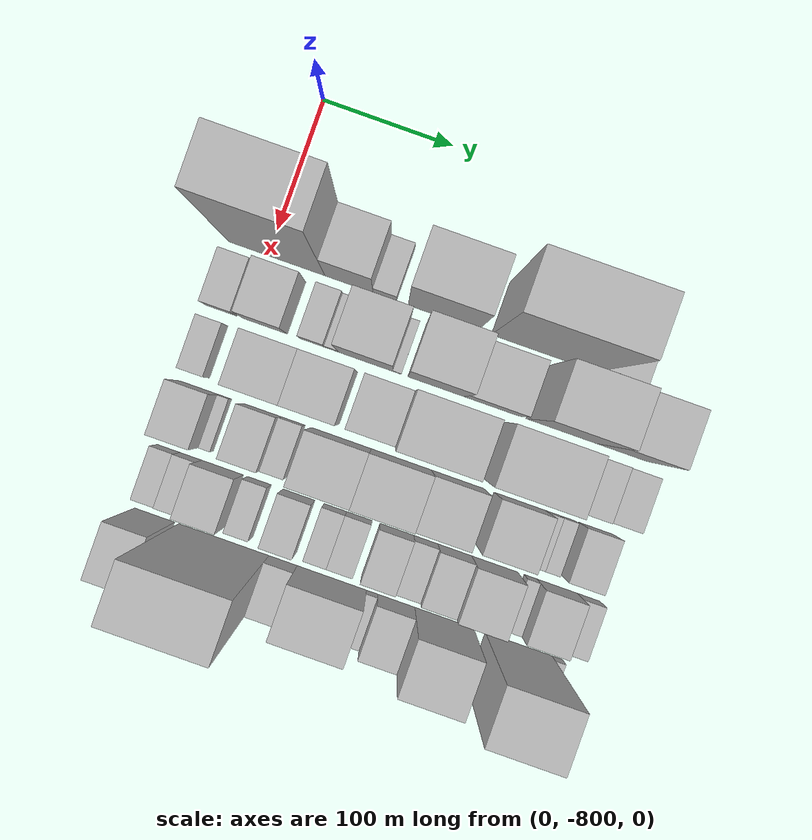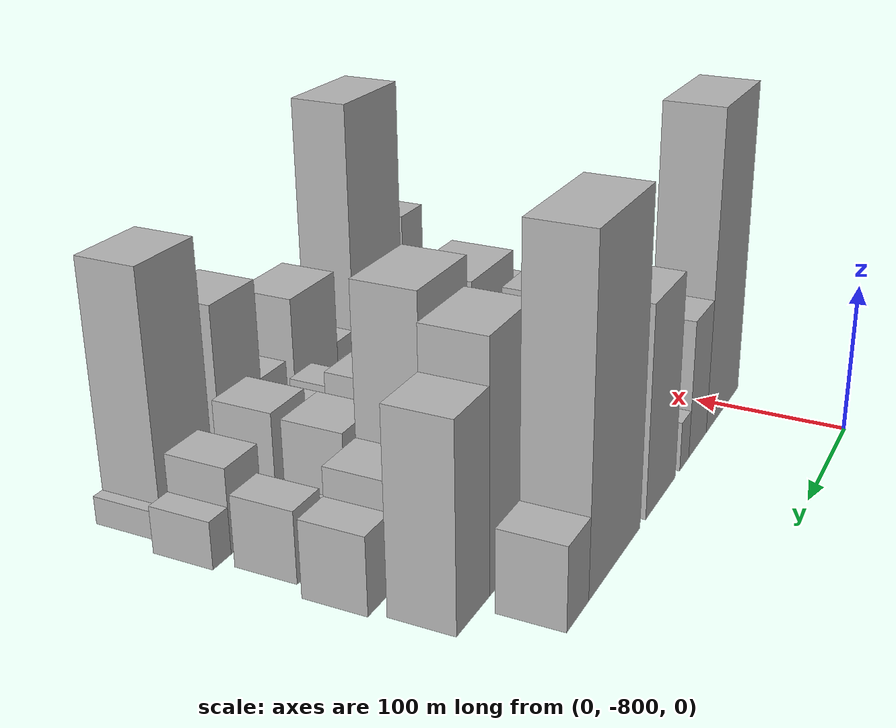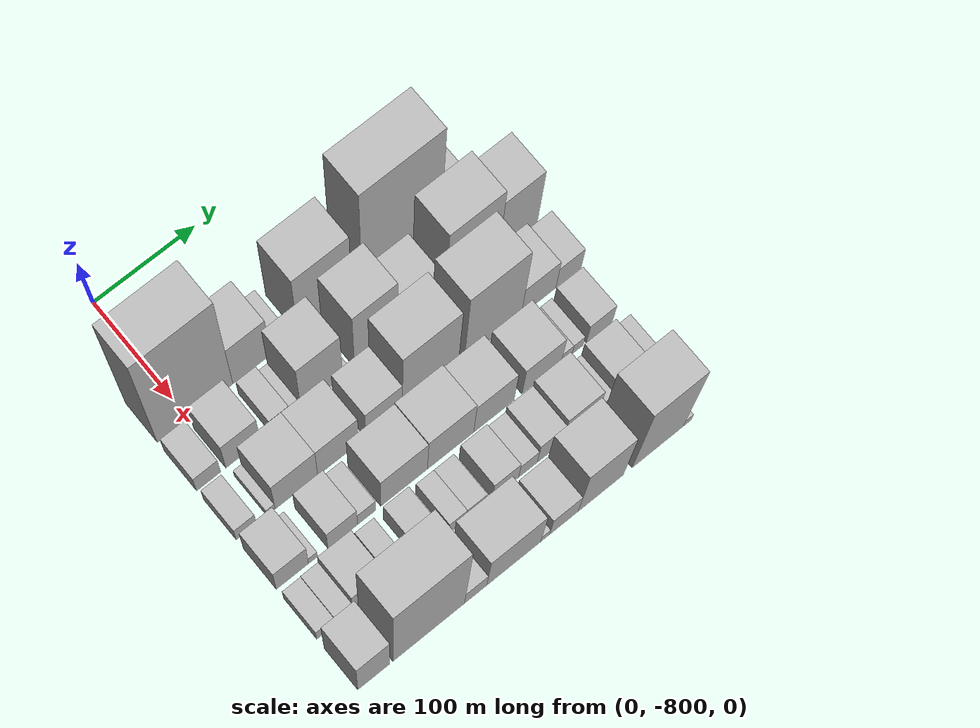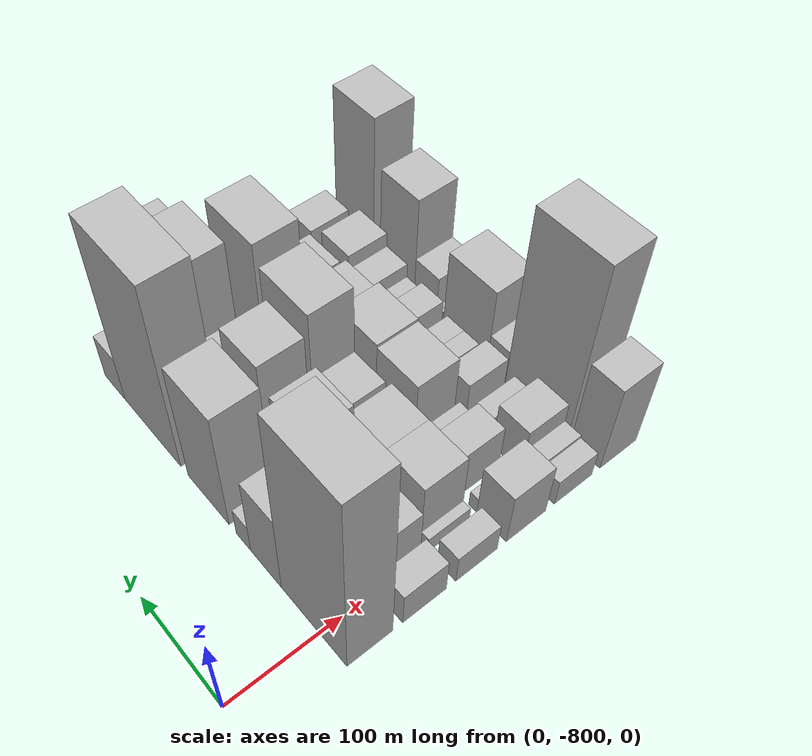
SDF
<sdf version="1.6">
 <world name="default">
  <model name="building_1">
   <static>1</static>
   <pose>100.0000 -793.1212 0 0.000000 0.000000 0.000000</pose>
   <link name="link">
    <pose>0 0 108.00 0 0 0</pose>
    <collision name="collision"><geometry><box><size>40.0000 73.7576 216.0000</size></box></geometry></collision>
    <visual name="visual">
     <cast_shadows>0</cast_shadows>
     <geometry><box><size>40.0000 73.7576 216.0000</size></box></geometry>
     <material>
      <script>
       <uri>model://HANNAS_wall/materials/scripts</uri>
       <uri>model://HANNAS_wall/materials/textures</uri>
       <name>vrc/HANNAS_wall</name>
      </script>
     </material>
    </visual>
   </link>
  </model>
  <model name="building_2">
   <static>1</static>
   <pose>100.0000 -737.7081 0 0.000000 0.000000 0.000000</pose>
   <link name="link">
    <pose>0 0 46.50 0 0 0</pose>
    <collision name="collision"><geometry><box><size>40.0000 37.0684 93.0000</size></box></geometry></collision>
    <visual name="visual">
     <cast_shadows>0</cast_shadows>
     <geometry><box><size>40.0000 37.0684 93.0000</size></box></geometry>
     <material>
      <script>
       <uri>model://HANNAS_wall/materials/scripts</uri>
       <uri>model://HANNAS_wall/materials/textures</uri>
       <name>vrc/HANNAS_wall</name>
      </script>
     </material>
    </visual>
   </link>
  </model>
  <model name="building_3">
   <static>1</static>
   <pose>100.0000 -710.1865 0 0.000000 0.000000 0.000000</pose>
   <link name="link">
    <pose>0 0 16.50 0 0 0</pose>
    <collision name="collision"><geometry><box><size>40.0000 17.9748 33.0000</size></box></geometry></collision>
    <visual name="visual">
     <cast_shadows>0</cast_shadows>
     <geometry><box><size>40.0000 17.9748 33.0000</size></box></geometry>
     <material>
      <script>
       <uri>model://HANNAS_wall/materials/scripts</uri>
       <uri>model://HANNAS_wall/materials/textures</uri>
       <name>vrc/HANNAS_wall</name>
      </script>
     </material>
    </visual>
   </link>
  </model>
  <model name="building_4">
   <static>1</static>
   <pose>100.0000 -665.2125 0 0.000000 0.000000 0.000000</pose>
   <link name="link">
    <pose>0 0 67.50 0 0 0</pose>
    <collision name="collision"><geometry><box><size>40.0000 53.9733 135.0000</size></box></geometry></collision>
    <visual name="visual">
     <cast_shadows>0</cast_shadows>
     <geometry><box><size>40.0000 53.9733 135.0000</size></box></geometry>
     <material>
      <script>
       <uri>model://HANNAS_wall/materials/scripts</uri>
       <uri>model://HANNAS_wall/materials/textures</uri>
       <name>vrc/HANNAS_wall</name>
      </script>
     </material>
    </visual>
   </link>
  </model>
  <model name="building_5">
   <static>1</static>
   <pose>100.0000 -588.1963 0 0.000000 0.000000 0.000000</pose>
   <link name="link">
    <pose>0 0 103.50 0 0 0</pose>
    <collision name="collision"><geometry><box><size>40.0000 80.0591 207.0000</size></box></geometry></collision>
    <visual name="visual">
     <cast_shadows>0</cast_shadows>
     <geometry><box><size>40.0000 80.0591 207.0000</size></box></geometry>
     <material>
      <script>
       <uri>model://HANNAS_wall/materials/scripts</uri>
       <uri>model://HANNAS_wall/materials/textures</uri>
       <name>vrc/HANNAS_wall</name>
      </script>
     </material>
    </visual>
   </link>
  </model>
  <model name="building_6">
   <static>1</static>
   <pose>100.0000 -533.0050 0 0.000000 0.000000 0.000000</pose>
   <link name="link">
    <pose>0 0 25.50 0 0 0</pose>
    <collision name="collision"><geometry><box><size>40.0000 30.3234 51.0000</size></box></geometry></collision>
    <visual name="visual">
     <cast_shadows>0</cast_shadows>
     <geometry><box><size>40.0000 30.3234 51.0000</size></box></geometry>
     <material>
      <script>
       <uri>model://HANNAS_wall/materials/scripts</uri>
       <uri>model://HANNAS_wall/materials/textures</uri>
       <name>vrc/HANNAS_wall</name>
      </script>
     </material>
    </visual>
   </link>
  </model>
  <model name="building_49">
   <static>1</static>
   <pose>149.0000 -818.3011 0 0.000000 0.000000 0.000000</pose>
   <link name="link">
    <pose>0 0 19.50 0 0 0</pose>
    <collision name="collision"><geometry><box><size>40.0000 23.3978 39.0000</size></box></geometry></collision>
    <visual name="visual">
     <cast_shadows>0</cast_shadows>
     <geometry><box><size>40.0000 23.3978 39.0000</size></box></geometry>
     <material>
      <script>
       <uri>model://HANNAS_wall/materials/scripts</uri>
       <uri>model://HANNAS_wall/materials/textures</uri>
       <name>vrc/HANNAS_wall</name>
      </script>
     </material>
    </visual>
   </link>
  </model>
  <model name="building_50">
   <static>1</static>
   <pose>149.0000 -784.6817 0 0.000000 0.000000 0.000000</pose>
   <link name="link">
    <pose>0 0 33.00 0 0 0</pose>
    <collision name="collision"><geometry><box><size>40.0000 33.8410 66.0000</size></box></geometry></collision>
    <visual name="visual">
     <cast_shadows>0</cast_shadows>
     <geometry><box><size>40.0000 33.8410 66.0000</size></box></geometry>
     <material>
      <script>
       <uri>model://HANNAS_wall/materials/scripts</uri>
       <uri>model://HANNAS_wall/materials/textures</uri>
       <name>vrc/HANNAS_wall</name>
      </script>
     </material>
    </visual>
   </link>
  </model>
  <model name="building_51">
   <static>1</static>
   <pose>149.0000 -748.1782 0 0.000000 0.000000 0.000000</pose>
   <link name="link">
    <pose>0 0 18.00 0 0 0</pose>
    <collision name="collision"><geometry><box><size>40.0000 19.1659 36.0000</size></box></geometry></collision>
    <visual name="visual">
     <cast_shadows>0</cast_shadows>
     <geometry><box><size>40.0000 19.1659 36.0000</size></box></geometry>
     <material>
      <script>
       <uri>model://HANNAS_wall/materials/scripts</uri>
       <uri>model://HANNAS_wall/materials/textures</uri>
       <name>vrc/HANNAS_wall</name>
      </script>
     </material>
    </visual>
   </link>
  </model>
  <model name="building_52">
   <static>1</static>
   <pose>149.0000 -733.3904 0 0.000000 0.000000 0.000000</pose>
   <link name="link">
    <pose>0 0 10.50 0 0 0</pose>
    <collision name="collision"><geometry><box><size>40.0000 10.4098 21.0000</size></box></geometry></collision>
    <visual name="visual">
     <cast_shadows>0</cast_shadows>
     <geometry><box><size>40.0000 10.4098 21.0000</size></box></geometry>
     <material>
      <script>
       <uri>model://HANNAS_wall/materials/scripts</uri>
       <uri>model://HANNAS_wall/materials/textures</uri>
       <name>vrc/HANNAS_wall</name>
      </script>
     </material>
    </visual>
   </link>
  </model>
  <model name="building_53">
   <static>1</static>
   <pose>149.0000 -707.5355 0 0.000000 0.000000 0.000000</pose>
   <link name="link">
    <pose>0 0 55.50 0 0 0</pose>
    <collision name="collision"><geometry><box><size>40.0000 41.3000 111.0000</size></box></geometry></collision>
    <visual name="visual">
     <cast_shadows>0</cast_shadows>
     <geometry><box><size>40.0000 41.3000 111.0000</size></box></geometry>
     <material>
      <script>
       <uri>model://HANNAS_wall/materials/scripts</uri>
       <uri>model://HANNAS_wall/materials/textures</uri>
       <name>vrc/HANNAS_wall</name>
      </script>
     </material>
    </visual>
   </link>
  </model>
  <model name="building_54">
   <static>1</static>
   <pose>149.0000 -683.5257 0 0.000000 0.000000 0.000000</pose>
   <link name="link">
    <pose>0 0 7.50 0 0 0</pose>
    <collision name="collision"><geometry><box><size>40.0000 6.7196 15.0000</size></box></geometry></collision>
    <visual name="visual">
     <cast_shadows>0</cast_shadows>
     <geometry><box><size>40.0000 6.7196 15.0000</size></box></geometry>
     <material>
      <script>
       <uri>model://HANNAS_wall/materials/scripts</uri>
       <uri>model://HANNAS_wall/materials/textures</uri>
       <name>vrc/HANNAS_wall</name>
      </script>
     </material>
    </visual>
   </link>
  </model>
  <model name="building_55">
   <static>1</static>
   <pose>149.0000 -653.6527 0 0.000000 0.000000 0.000000</pose>
   <link name="link">
    <pose>0 0 66.00 0 0 0</pose>
    <collision name="collision"><geometry><box><size>40.0000 43.0264 132.0000</size></box></geometry></collision>
    <visual name="visual">
     <cast_shadows>0</cast_shadows>
     <geometry><box><size>40.0000 43.0264 132.0000</size></box></geometry>
     <material>
      <script>
       <uri>model://HANNAS_wall/materials/scripts</uri>
       <uri>model://HANNAS_wall/materials/textures</uri>
       <name>vrc/HANNAS_wall</name>
      </script>
     </material>
    </visual>
   </link>
  </model>
  <model name="building_56">
   <static>1</static>
   <pose>149.0000 -610.6642 0 0.000000 0.000000 0.000000</pose>
   <link name="link">
    <pose>0 0 36.00 0 0 0</pose>
    <collision name="collision"><geometry><box><size>40.0000 42.9506 72.0000</size></box></geometry></collision>
    <visual name="visual">
     <cast_shadows>0</cast_shadows>
     <geometry><box><size>40.0000 42.9506 72.0000</size></box></geometry>
     <material>
      <script>
       <uri>model://HANNAS_wall/materials/scripts</uri>
       <uri>model://HANNAS_wall/materials/textures</uri>
       <name>vrc/HANNAS_wall</name>
      </script>
     </material>
    </visual>
   </link>
  </model>
  <model name="building_57">
   <static>1</static>
   <pose>149.0000 -557.3041 0 0.000000 0.000000 0.000000</pose>
   <link name="link">
    <pose>0 0 75.00 0 0 0</pose>
    <collision name="collision"><geometry><box><size>40.0000 53.7697 150.0000</size></box></geometry></collision>
    <visual name="visual">
     <cast_shadows>0</cast_shadows>
     <geometry><box><size>40.0000 53.7697 150.0000</size></box></geometry>
     <material>
      <script>
       <uri>model://HANNAS_wall/materials/scripts</uri>
       <uri>model://HANNAS_wall/materials/textures</uri>
       <name>vrc/HANNAS_wall</name>
      </script>
     </material>
    </visual>
   </link>
  </model>
  <model name="building_58">
   <static>1</static>
   <pose>149.0000 -510.7798 0 0.000000 0.000000 0.000000</pose>
   <link name="link">
    <pose>0 0 61.50 0 0 0</pose>
    <collision name="collision"><geometry><box><size>40.0000 39.2789 123.0000</size></box></geometry></collision>
    <visual name="visual">
     <cast_shadows>0</cast_shadows>
     <geometry><box><size>40.0000 39.2789 123.0000</size></box></geometry>
     <material>
      <script>
       <uri>model://HANNAS_wall/materials/scripts</uri>
       <uri>model://HANNAS_wall/materials/textures</uri>
       <name>vrc/HANNAS_wall</name>
      </script>
     </material>
    </visual>
   </link>
  </model>
  <model name="building_100">
   <static>1</static>
   <pose>198.0000 -820.1991 0 0.000000 0.000000 0.000000</pose>
   <link name="link">
    <pose>0 0 16.50 0 0 0</pose>
    <collision name="collision"><geometry><box><size>40.0000 19.6018 33.0000</size></box></geometry></collision>
    <visual name="visual">
     <cast_shadows>0</cast_shadows>
     <geometry><box><size>40.0000 19.6018 33.0000</size></box></geometry>
     <material>
      <script>
       <uri>model://HANNAS_wall/materials/scripts</uri>
       <uri>model://HANNAS_wall/materials/textures</uri>
       <name>vrc/HANNAS_wall</name>
      </script>
     </material>
    </visual>
   </link>
  </model>
  <model name="building_101">
   <static>1</static>
   <pose>198.0000 -796.3309 0 0.000000 0.000000 0.000000</pose>
   <link name="link">
    <pose>0 0 9.00 0 0 0</pose>
    <collision name="collision"><geometry><box><size>40.0000 8.1346 18.0000</size></box></geometry></collision>
    <visual name="visual">
     <cast_shadows>0</cast_shadows>
     <geometry><box><size>40.0000 8.1346 18.0000</size></box></geometry>
     <material>
      <script>
       <uri>model://HANNAS_wall/materials/scripts</uri>
       <uri>model://HANNAS_wall/materials/textures</uri>
       <name>vrc/HANNAS_wall</name>
      </script>
     </material>
    </visual>
   </link>
  </model>
  <model name="building_102">
   <static>1</static>
   <pose>198.0000 -771.5007 0 0.000000 0.000000 0.000000</pose>
   <link name="link">
    <pose>0 0 37.50 0 0 0</pose>
    <collision name="collision"><geometry><box><size>40.0000 41.5259 75.0000</size></box></geometry></collision>
    <visual name="visual">
     <cast_shadows>0</cast_shadows>
     <geometry><box><size>40.0000 41.5259 75.0000</size></box></geometry>
     <material>
      <script>
       <uri>model://HANNAS_wall/materials/scripts</uri>
       <uri>model://HANNAS_wall/materials/textures</uri>
       <name>vrc/HANNAS_wall</name>
      </script>
     </material>
    </visual>
   </link>
  </model>
  <model name="building_103">
   <static>1</static>
   <pose>198.0000 -730.6020 0 0.000000 0.000000 0.000000</pose>
   <link name="link">
    <pose>0 0 37.50 0 0 0</pose>
    <collision name="collision"><geometry><box><size>40.0000 40.2714 75.0000</size></box></geometry></collision>
    <visual name="visual">
     <cast_shadows>0</cast_shadows>
     <geometry><box><size>40.0000 40.2714 75.0000</size></box></geometry>
     <material>
      <script>
       <uri>model://HANNAS_wall/materials/scripts</uri>
       <uri>model://HANNAS_wall/materials/textures</uri>
       <name>vrc/HANNAS_wall</name>
      </script>
     </material>
    </visual>
   </link>
  </model>
  <model name="building_104">
   <static>1</static>
   <pose>198.0000 -685.4921 0 0.000000 0.000000 0.000000</pose>
   <link name="link">
    <pose>0 0 34.50 0 0 0</pose>
    <collision name="collision"><geometry><box><size>40.0000 35.9484 69.0000</size></box></geometry></collision>
    <visual name="visual">
     <cast_shadows>0</cast_shadows>
     <geometry><box><size>40.0000 35.9484 69.0000</size></box></geometry>
     <material>
      <script>
       <uri>model://HANNAS_wall/materials/scripts</uri>
       <uri>model://HANNAS_wall/materials/textures</uri>
       <name>vrc/HANNAS_wall</name>
      </script>
     </material>
    </visual>
   </link>
  </model>
  <model name="building_105">
   <static>1</static>
   <pose>198.0000 -639.5523 0 0.000000 0.000000 0.000000</pose>
   <link name="link">
    <pose>0 0 70.50 0 0 0</pose>
    <collision name="collision"><geometry><box><size>40.0000 55.9314 141.0000</size></box></geometry></collision>
    <visual name="visual">
     <cast_shadows>0</cast_shadows>
     <geometry><box><size>40.0000 55.9314 141.0000</size></box></geometry>
     <material>
      <script>
       <uri>model://HANNAS_wall/materials/scripts</uri>
       <uri>model://HANNAS_wall/materials/textures</uri>
       <name>vrc/HANNAS_wall</name>
      </script>
     </material>
    </visual>
   </link>
  </model>
  <model name="building_106">
   <static>1</static>
   <pose>198.0000 -576.8396 0 0.000000 0.000000 0.000000</pose>
   <link name="link">
    <pose>0 0 79.50 0 0 0</pose>
    <collision name="collision"><geometry><box><size>40.0000 57.4940 159.0000</size></box></geometry></collision>
    <visual name="visual">
     <cast_shadows>0</cast_shadows>
     <geometry><box><size>40.0000 57.4940 159.0000</size></box></geometry>
     <material>
      <script>
       <uri>model://HANNAS_wall/materials/scripts</uri>
       <uri>model://HANNAS_wall/materials/textures</uri>
       <name>vrc/HANNAS_wall</name>
      </script>
     </material>
    </visual>
   </link>
  </model>
  <model name="building_107">
   <static>1</static>
   <pose>198.0000 -530.4888 0 0.000000 0.000000 0.000000</pose>
   <link name="link">
    <pose>0 0 33.00 0 0 0</pose>
    <collision name="collision"><geometry><box><size>40.0000 35.2077 66.0000</size></box></geometry></collision>
    <visual name="visual">
     <cast_shadows>0</cast_shadows>
     <geometry><box><size>40.0000 35.2077 66.0000</size></box></geometry>
     <material>
      <script>
       <uri>model://HANNAS_wall/materials/scripts</uri>
       <uri>model://HANNAS_wall/materials/textures</uri>
       <name>vrc/HANNAS_wall</name>
      </script>
     </material>
    </visual>
   </link>
  </model>
  <model name="building_108">
   <static>1</static>
   <pose>198.0000 -500.0040 0 0.000000 0.000000 0.000000</pose>
   <link name="link">
    <pose>0 0 24.00 0 0 0</pose>
    <collision name="collision"><geometry><box><size>40.0000 25.7620 48.0000</size></box></geometry></collision>
    <visual name="visual">
     <cast_shadows>0</cast_shadows>
     <geometry><box><size>40.0000 25.7620 48.0000</size></box></geometry>
     <material>
      <script>
       <uri>model://HANNAS_wall/materials/scripts</uri>
       <uri>model://HANNAS_wall/materials/textures</uri>
       <name>vrc/HANNAS_wall</name>
      </script>
     </material>
    </visual>
   </link>
  </model>
  <model name="building_147">
   <static>1</static>
   <pose>247.0000 -814.4242 0 0.000000 0.000000 0.000000</pose>
   <link name="link">
    <pose>0 0 30.00 0 0 0</pose>
    <collision name="collision"><geometry><box><size>40.0000 31.1517 60.0000</size></box></geometry></collision>
    <visual name="visual">
     <cast_shadows>0</cast_shadows>
     <geometry><box><size>40.0000 31.1517 60.0000</size></box></geometry>
     <material>
      <script>
       <uri>model://HANNAS_wall/materials/scripts</uri>
       <uri>model://HANNAS_wall/materials/textures</uri>
       <name>vrc/HANNAS_wall</name>
      </script>
     </material>
    </visual>
   </link>
  </model>
  <model name="building_148">
   <static>1</static>
   <pose>247.0000 -794.4655 0 0.000000 0.000000 0.000000</pose>
   <link name="link">
    <pose>0 0 9.00 0 0 0</pose>
    <collision name="collision"><geometry><box><size>40.0000 8.7657 18.0000</size></box></geometry></collision>
    <visual name="visual">
     <cast_shadows>0</cast_shadows>
     <geometry><box><size>40.0000 8.7657 18.0000</size></box></geometry>
     <material>
      <script>
       <uri>model://HANNAS_wall/materials/scripts</uri>
       <uri>model://HANNAS_wall/materials/textures</uri>
       <name>vrc/HANNAS_wall</name>
      </script>
     </material>
    </visual>
   </link>
  </model>
  <model name="building_149">
   <static>1</static>
   <pose>247.0000 -765.6668 0 0.000000 0.000000 0.000000</pose>
   <link name="link">
    <pose>0 0 25.50 0 0 0</pose>
    <collision name="collision"><geometry><box><size>40.0000 28.8315 51.0000</size></box></geometry></collision>
    <visual name="visual">
     <cast_shadows>0</cast_shadows>
     <geometry><box><size>40.0000 28.8315 51.0000</size></box></geometry>
     <material>
      <script>
       <uri>model://HANNAS_wall/materials/scripts</uri>
       <uri>model://HANNAS_wall/materials/textures</uri>
       <name>vrc/HANNAS_wall</name>
      </script>
     </material>
    </visual>
   </link>
  </model>
  <model name="building_150">
   <static>1</static>
   <pose>247.0000 -742.3114 0 0.000000 0.000000 0.000000</pose>
   <link name="link">
    <pose>0 0 16.50 0 0 0</pose>
    <collision name="collision"><geometry><box><size>40.0000 17.8794 33.0000</size></box></geometry></collision>
    <visual name="visual">
     <cast_shadows>0</cast_shadows>
     <geometry><box><size>40.0000 17.8794 33.0000</size></box></geometry>
     <material>
      <script>
       <uri>model://HANNAS_wall/materials/scripts</uri>
       <uri>model://HANNAS_wall/materials/textures</uri>
       <name>vrc/HANNAS_wall</name>
      </script>
     </material>
    </visual>
   </link>
  </model>
  <model name="building_151">
   <static>1</static>
   <pose>247.0000 -705.4520 0 0.000000 0.000000 0.000000</pose>
   <link name="link">
    <pose>0 0 40.50 0 0 0</pose>
    <collision name="collision"><geometry><box><size>40.0000 45.8393 81.0000</size></box></geometry></collision>
    <visual name="visual">
     <cast_shadows>0</cast_shadows>
     <geometry><box><size>40.0000 45.8393 81.0000</size></box></geometry>
     <material>
      <script>
       <uri>model://HANNAS_wall/materials/scripts</uri>
       <uri>model://HANNAS_wall/materials/textures</uri>
       <name>vrc/HANNAS_wall</name>
      </script>
     </material>
    </visual>
   </link>
  </model>
  <model name="building_152">
   <static>1</static>
   <pose>247.0000 -659.5220 0 0.000000 0.000000 0.000000</pose>
   <link name="link">
    <pose>0 0 42.00 0 0 0</pose>
    <collision name="collision"><geometry><box><size>40.0000 46.0206 84.0000</size></box></geometry></collision>
    <visual name="visual">
     <cast_shadows>0</cast_shadows>
     <geometry><box><size>40.0000 46.0206 84.0000</size></box></geometry>
     <material>
      <script>
       <uri>model://HANNAS_wall/materials/scripts</uri>
       <uri>model://HANNAS_wall/materials/textures</uri>
       <name>vrc/HANNAS_wall</name>
      </script>
     </material>
    </visual>
   </link>
  </model>
  <model name="building_153">
   <static>1</static>
   <pose>247.0000 -616.3579 0 0.000000 0.000000 0.000000</pose>
   <link name="link">
    <pose>0 0 37.50 0 0 0</pose>
    <collision name="collision"><geometry><box><size>40.0000 40.3076 75.0000</size></box></geometry></collision>
    <visual name="visual">
     <cast_shadows>0</cast_shadows>
     <geometry><box><size>40.0000 40.3076 75.0000</size></box></geometry>
     <material>
      <script>
       <uri>model://HANNAS_wall/materials/scripts</uri>
       <uri>model://HANNAS_wall/materials/textures</uri>
       <name>vrc/HANNAS_wall</name>
      </script>
     </material>
    </visual>
   </link>
  </model>
  <model name="building_154">
   <static>1</static>
   <pose>247.0000 -568.5290 0 0.000000 0.000000 0.000000</pose>
   <link name="link">
    <pose>0 0 33.00 0 0 0</pose>
    <collision name="collision"><geometry><box><size>40.0000 39.3503 66.0000</size></box></geometry></collision>
    <visual name="visual">
     <cast_shadows>0</cast_shadows>
     <geometry><box><size>40.0000 39.3503 66.0000</size></box></geometry>
     <material>
      <script>
       <uri>model://HANNAS_wall/materials/scripts</uri>
       <uri>model://HANNAS_wall/materials/textures</uri>
       <name>vrc/HANNAS_wall</name>
      </script>
     </material>
    </visual>
   </link>
  </model>
  <model name="building_155">
   <static>1</static>
   <pose>247.0000 -543.2204 0 0.000000 0.000000 0.000000</pose>
   <link name="link">
    <pose>0 0 12.00 0 0 0</pose>
    <collision name="collision"><geometry><box><size>40.0000 11.2669 24.0000</size></box></geometry></collision>
    <visual name="visual">
     <cast_shadows>0</cast_shadows>
     <geometry><box><size>40.0000 11.2669 24.0000</size></box></geometry>
     <material>
      <script>
       <uri>model://HANNAS_wall/materials/scripts</uri>
       <uri>model://HANNAS_wall/materials/textures</uri>
       <name>vrc/HANNAS_wall</name>
      </script>
     </material>
    </visual>
   </link>
  </model>
  <model name="building_156">
   <static>1</static>
   <pose>247.0000 -531.9494 0 0.000000 0.000000 0.000000</pose>
   <link name="link">
    <pose>0 0 12.00 0 0 0</pose>
    <collision name="collision"><geometry><box><size>40.0000 11.2750 24.0000</size></box></geometry></collision>
    <visual name="visual">
     <cast_shadows>0</cast_shadows>
     <geometry><box><size>40.0000 11.2750 24.0000</size></box></geometry>
     <material>
      <script>
       <uri>model://HANNAS_wall/materials/scripts</uri>
       <uri>model://HANNAS_wall/materials/textures</uri>
       <name>vrc/HANNAS_wall</name>
      </script>
     </material>
    </visual>
   </link>
  </model>
  <model name="building_157">
   <static>1</static>
   <pose>247.0000 -510.0887 0 0.000000 0.000000 0.000000</pose>
   <link name="link">
    <pose>0 0 22.50 0 0 0</pose>
    <collision name="collision"><geometry><box><size>40.0000 26.4465 45.0000</size></box></geometry></collision>
    <visual name="visual">
     <cast_shadows>0</cast_shadows>
     <geometry><box><size>40.0000 26.4465 45.0000</size></box></geometry>
     <material>
      <script>
       <uri>model://HANNAS_wall/materials/scripts</uri>
       <uri>model://HANNAS_wall/materials/textures</uri>
       <name>vrc/HANNAS_wall</name>
      </script>
     </material>
    </visual>
   </link>
  </model>
  <model name="building_197">
   <static>1</static>
   <pose>296.0000 -821.2194 0 0.000000 0.000000 0.000000</pose>
   <link name="link">
    <pose>0 0 15.00 0 0 0</pose>
    <collision name="collision"><geometry><box><size>40.0000 17.5612 30.0000</size></box></geometry></collision>
    <visual name="visual">
     <cast_shadows>0</cast_shadows>
     <geometry><box><size>40.0000 17.5612 30.0000</size></box></geometry>
     <material>
      <script>
       <uri>model://HANNAS_wall/materials/scripts</uri>
       <uri>model://HANNAS_wall/materials/textures</uri>
       <name>vrc/HANNAS_wall</name>
      </script>
     </material>
    </visual>
   </link>
  </model>
  <model name="building_198">
   <static>1</static>
   <pose>296.0000 -804.0159 0 0.000000 0.000000 0.000000</pose>
   <link name="link">
    <pose>0 0 16.50 0 0 0</pose>
    <collision name="collision"><geometry><box><size>40.0000 16.8459 33.0000</size></box></geometry></collision>
    <visual name="visual">
     <cast_shadows>0</cast_shadows>
     <geometry><box><size>40.0000 16.8459 33.0000</size></box></geometry>
     <material>
      <script>
       <uri>model://HANNAS_wall/materials/scripts</uri>
       <uri>model://HANNAS_wall/materials/textures</uri>
       <name>vrc/HANNAS_wall</name>
      </script>
     </material>
    </visual>
   </link>
  </model>
  <model name="building_199">
   <static>1</static>
   <pose>296.0000 -779.6303 0 0.000000 0.000000 0.000000</pose>
   <link name="link">
    <pose>0 0 27.00 0 0 0</pose>
    <collision name="collision"><geometry><box><size>40.0000 31.9253 54.0000</size></box></geometry></collision>
    <visual name="visual">
     <cast_shadows>0</cast_shadows>
     <geometry><box><size>40.0000 31.9253 54.0000</size></box></geometry>
     <material>
      <script>
       <uri>model://HANNAS_wall/materials/scripts</uri>
       <uri>model://HANNAS_wall/materials/textures</uri>
       <name>vrc/HANNAS_wall</name>
      </script>
     </material>
    </visual>
   </link>
  </model>
  <model name="building_200">
   <static>1</static>
   <pose>296.0000 -751.4199 0 0.000000 0.000000 0.000000</pose>
   <link name="link">
    <pose>0 0 16.50 0 0 0</pose>
    <collision name="collision"><geometry><box><size>40.0000 18.4954 33.0000</size></box></geometry></collision>
    <visual name="visual">
     <cast_shadows>0</cast_shadows>
     <geometry><box><size>40.0000 18.4954 33.0000</size></box></geometry>
     <material>
      <script>
       <uri>model://HANNAS_wall/materials/scripts</uri>
       <uri>model://HANNAS_wall/materials/textures</uri>
       <name>vrc/HANNAS_wall</name>
      </script>
     </material>
    </visual>
   </link>
  </model>
  <model name="building_201">
   <static>1</static>
   <pose>296.0000 -720.8672 0 0.000000 0.000000 0.000000</pose>
   <link name="link">
    <pose>0 0 22.50 0 0 0</pose>
    <collision name="collision"><geometry><box><size>40.0000 24.6100 45.0000</size></box></geometry></collision>
    <visual name="visual">
     <cast_shadows>0</cast_shadows>
     <geometry><box><size>40.0000 24.6100 45.0000</size></box></geometry>
     <material>
      <script>
       <uri>model://HANNAS_wall/materials/scripts</uri>
       <uri>model://HANNAS_wall/materials/textures</uri>
       <name>vrc/HANNAS_wall</name>
      </script>
     </material>
    </visual>
   </link>
  </model>
  <model name="building_202">
   <static>1</static>
   <pose>296.0000 -692.8459 0 0.000000 0.000000 0.000000</pose>
   <link name="link">
    <pose>0 0 16.50 0 0 0</pose>
    <collision name="collision"><geometry><box><size>40.0000 17.4326 33.0000</size></box></geometry></collision>
    <visual name="visual">
     <cast_shadows>0</cast_shadows>
     <geometry><box><size>40.0000 17.4326 33.0000</size></box></geometry>
     <material>
      <script>
       <uri>model://HANNAS_wall/materials/scripts</uri>
       <uri>model://HANNAS_wall/materials/textures</uri>
       <name>vrc/HANNAS_wall</name>
      </script>
     </material>
    </visual>
   </link>
  </model>
  <model name="building_203">
   <static>1</static>
   <pose>296.0000 -674.3406 0 0.000000 0.000000 0.000000</pose>
   <link name="link">
    <pose>0 0 16.50 0 0 0</pose>
    <collision name="collision"><geometry><box><size>40.0000 19.5781 33.0000</size></box></geometry></collision>
    <visual name="visual">
     <cast_shadows>0</cast_shadows>
     <geometry><box><size>40.0000 19.5781 33.0000</size></box></geometry>
     <material>
      <script>
       <uri>model://HANNAS_wall/materials/scripts</uri>
       <uri>model://HANNAS_wall/materials/textures</uri>
       <name>vrc/HANNAS_wall</name>
      </script>
     </material>
    </visual>
   </link>
  </model>
  <model name="building_204">
   <static>1</static>
   <pose>296.0000 -645.5799 0 0.000000 0.000000 0.000000</pose>
   <link name="link">
    <pose>0 0 22.50 0 0 0</pose>
    <collision name="collision"><geometry><box><size>40.0000 25.9433 45.0000</size></box></geometry></collision>
    <visual name="visual">
     <cast_shadows>0</cast_shadows>
     <geometry><box><size>40.0000 25.9433 45.0000</size></box></geometry>
     <material>
      <script>
       <uri>model://HANNAS_wall/materials/scripts</uri>
       <uri>model://HANNAS_wall/materials/textures</uri>
       <name>vrc/HANNAS_wall</name>
      </script>
     </material>
    </visual>
   </link>
  </model>
  <model name="building_205">
   <static>1</static>
   <pose>296.0000 -623.3335 0 0.000000 0.000000 0.000000</pose>
   <link name="link">
    <pose>0 0 18.00 0 0 0</pose>
    <collision name="collision"><geometry><box><size>40.0000 18.5494 36.0000</size></box></geometry></collision>
    <visual name="visual">
     <cast_shadows>0</cast_shadows>
     <geometry><box><size>40.0000 18.5494 36.0000</size></box></geometry>
     <material>
      <script>
       <uri>model://HANNAS_wall/materials/scripts</uri>
       <uri>model://HANNAS_wall/materials/textures</uri>
       <name>vrc/HANNAS_wall</name>
      </script>
     </material>
    </visual>
   </link>
  </model>
  <model name="building_206">
   <static>1</static>
   <pose>296.0000 -601.0435 0 0.000000 0.000000 0.000000</pose>
   <link name="link">
    <pose>0 0 25.50 0 0 0</pose>
    <collision name="collision"><geometry><box><size>40.0000 26.0306 51.0000</size></box></geometry></collision>
    <visual name="visual">
     <cast_shadows>0</cast_shadows>
     <geometry><box><size>40.0000 26.0306 51.0000</size></box></geometry>
     <material>
      <script>
       <uri>model://HANNAS_wall/materials/scripts</uri>
       <uri>model://HANNAS_wall/materials/textures</uri>
       <name>vrc/HANNAS_wall</name>
      </script>
     </material>
    </visual>
   </link>
  </model>
  <model name="building_207">
   <static>1</static>
   <pose>296.0000 -570.3310 0 0.000000 0.000000 0.000000</pose>
   <link name="link">
    <pose>0 0 33.00 0 0 0</pose>
    <collision name="collision"><geometry><box><size>40.0000 35.3943 66.0000</size></box></geometry></collision>
    <visual name="visual">
     <cast_shadows>0</cast_shadows>
     <geometry><box><size>40.0000 35.3943 66.0000</size></box></geometry>
     <material>
      <script>
       <uri>model://HANNAS_wall/materials/scripts</uri>
       <uri>model://HANNAS_wall/materials/textures</uri>
       <name>vrc/HANNAS_wall</name>
      </script>
     </material>
    </visual>
   </link>
  </model>
  <model name="building_208">
   <static>1</static>
   <pose>296.0000 -542.7334 0 0.000000 0.000000 0.000000</pose>
   <link name="link">
    <pose>0 0 12.00 0 0 0</pose>
    <collision name="collision"><geometry><box><size>40.0000 9.8009 24.0000</size></box></geometry></collision>
    <visual name="visual">
     <cast_shadows>0</cast_shadows>
     <geometry><box><size>40.0000 9.8009 24.0000</size></box></geometry>
     <material>
      <script>
       <uri>model://HANNAS_wall/materials/scripts</uri>
       <uri>model://HANNAS_wall/materials/textures</uri>
       <name>vrc/HANNAS_wall</name>
      </script>
     </material>
    </visual>
   </link>
  </model>
  <model name="building_209">
   <static>1</static>
   <pose>296.0000 -522.1453 0 0.000000 0.000000 0.000000</pose>
   <link name="link">
    <pose>0 0 27.00 0 0 0</pose>
    <collision name="collision"><geometry><box><size>40.0000 31.3753 54.0000</size></box></geometry></collision>
    <visual name="visual">
     <cast_shadows>0</cast_shadows>
     <geometry><box><size>40.0000 31.3753 54.0000</size></box></geometry>
     <material>
      <script>
       <uri>model://HANNAS_wall/materials/scripts</uri>
       <uri>model://HANNAS_wall/materials/textures</uri>
       <name>vrc/HANNAS_wall</name>
      </script>
     </material>
    </visual>
   </link>
  </model>
  <model name="building_210">
   <static>1</static>
   <pose>296.0000 -497.8841 0 0.000000 0.000000 0.000000</pose>
   <link name="link">
    <pose>0 0 15.00 0 0 0</pose>
    <collision name="collision"><geometry><box><size>40.0000 17.1470 30.0000</size></box></geometry></collision>
    <visual name="visual">
     <cast_shadows>0</cast_shadows>
     <geometry><box><size>40.0000 17.1470 30.0000</size></box></geometry>
     <material>
      <script>
       <uri>model://HANNAS_wall/materials/scripts</uri>
       <uri>model://HANNAS_wall/materials/textures</uri>
       <name>vrc/HANNAS_wall</name>
      </script>
     </material>
    </visual>
   </link>
  </model>
  <model name="building_248">
   <static>1</static>
   <pose>345.0000 -814.5746 0 0.000000 0.000000 0.000000</pose>
   <link name="link">
    <pose>0 0 49.50 0 0 0</pose>
    <collision name="collision"><geometry><box><size>40.0000 30.8507 99.0000</size></box></geometry></collision>
    <visual name="visual">
     <cast_shadows>0</cast_shadows>
     <geometry><box><size>40.0000 30.8507 99.0000</size></box></geometry>
     <material>
      <script>
       <uri>model://HANNAS_wall/materials/scripts</uri>
       <uri>model://HANNAS_wall/materials/textures</uri>
       <name>vrc/HANNAS_wall</name>
      </script>
     </material>
    </visual>
   </link>
  </model>
  <model name="building_249">
   <static>1</static>
   <pose>345.0000 -761.3725 0 0.000000 0.000000 0.000000</pose>
   <link name="link">
    <pose>0 0 99.00 0 0 0</pose>
    <collision name="collision"><geometry><box><size>40.0000 69.5534 198.0000</size></box></geometry></collision>
    <visual name="visual">
     <cast_shadows>0</cast_shadows>
     <geometry><box><size>40.0000 69.5534 198.0000</size></box></geometry>
     <material>
      <script>
       <uri>model://HANNAS_wall/materials/scripts</uri>
       <uri>model://HANNAS_wall/materials/textures</uri>
       <name>vrc/HANNAS_wall</name>
      </script>
     </material>
    </visual>
   </link>
  </model>
  <model name="building_250">
   <static>1</static>
   <pose>345.0000 -715.7187 0 0.000000 0.000000 0.000000</pose>
   <link name="link">
    <pose>0 0 19.50 0 0 0</pose>
    <collision name="collision"><geometry><box><size>40.0000 21.7541 39.0000</size></box></geometry></collision>
    <visual name="visual">
     <cast_shadows>0</cast_shadows>
     <geometry><box><size>40.0000 21.7541 39.0000</size></box></geometry>
     <material>
      <script>
       <uri>model://HANNAS_wall/materials/scripts</uri>
       <uri>model://HANNAS_wall/materials/textures</uri>
       <name>vrc/HANNAS_wall</name>
      </script>
     </material>
    </visual>
   </link>
  </model>
  <model name="building_251">
   <static>1</static>
   <pose>345.0000 -678.2448 0 0.000000 0.000000 0.000000</pose>
   <link name="link">
    <pose>0 0 45.00 0 0 0</pose>
    <collision name="collision"><geometry><box><size>40.0000 53.1938 90.0000</size></box></geometry></collision>
    <visual name="visual">
     <cast_shadows>0</cast_shadows>
     <geometry><box><size>40.0000 53.1938 90.0000</size></box></geometry>
     <material>
      <script>
       <uri>model://HANNAS_wall/materials/scripts</uri>
       <uri>model://HANNAS_wall/materials/textures</uri>
       <name>vrc/HANNAS_wall</name>
      </script>
     </material>
    </visual>
   </link>
  </model>
  <model name="building_252">
   <static>1</static>
   <pose>345.0000 -647.2204 0 0.000000 0.000000 0.000000</pose>
   <link name="link">
    <pose>0 0 9.00 0 0 0</pose>
    <collision name="collision"><geometry><box><size>40.0000 8.8549 18.0000</size></box></geometry></collision>
    <visual name="visual">
     <cast_shadows>0</cast_shadows>
     <geometry><box><size>40.0000 8.8549 18.0000</size></box></geometry>
     <material>
      <script>
       <uri>model://HANNAS_wall/materials/scripts</uri>
       <uri>model://HANNAS_wall/materials/textures</uri>
       <name>vrc/HANNAS_wall</name>
      </script>
     </material>
    </visual>
   </link>
  </model>
  <model name="building_253">
   <static>1</static>
   <pose>345.0000 -628.5875 0 0.000000 0.000000 0.000000</pose>
   <link name="link">
    <pose>0 0 25.50 0 0 0</pose>
    <collision name="collision"><geometry><box><size>40.0000 28.4110 51.0000</size></box></geometry></collision>
    <visual name="visual">
     <cast_shadows>0</cast_shadows>
     <geometry><box><size>40.0000 28.4110 51.0000</size></box></geometry>
     <material>
      <script>
       <uri>model://HANNAS_wall/materials/scripts</uri>
       <uri>model://HANNAS_wall/materials/textures</uri>
       <name>vrc/HANNAS_wall</name>
      </script>
     </material>
    </visual>
   </link>
  </model>
  <model name="building_254">
   <static>1</static>
   <pose>345.0000 -591.7725 0 0.000000 0.000000 0.000000</pose>
   <link name="link">
    <pose>0 0 58.50 0 0 0</pose>
    <collision name="collision"><geometry><box><size>40.0000 45.2189 117.0000</size></box></geometry></collision>
    <visual name="visual">
     <cast_shadows>0</cast_shadows>
     <geometry><box><size>40.0000 45.2189 117.0000</size></box></geometry>
     <material>
      <script>
       <uri>model://HANNAS_wall/materials/scripts</uri>
       <uri>model://HANNAS_wall/materials/textures</uri>
       <name>vrc/HANNAS_wall</name>
      </script>
     </material>
    </visual>
   </link>
  </model>
  <model name="building_255">
   <static>1</static>
   <pose>345.0000 -534.4383 0 0.000000 0.000000 0.000000</pose>
   <link name="link">
    <pose>0 0 81.00 0 0 0</pose>
    <collision name="collision"><geometry><box><size>40.0000 51.4496 162.0000</size></box></geometry></collision>
    <visual name="visual">
     <cast_shadows>0</cast_shadows>
     <geometry><box><size>40.0000 51.4496 162.0000</size></box></geometry>
     <material>
      <script>
       <uri>model://HANNAS_wall/materials/scripts</uri>
       <uri>model://HANNAS_wall/materials/textures</uri>
       <name>vrc/HANNAS_wall</name>
      </script>
     </material>
    </visual>
   </link>
  </model>
  <model name="building_256">
   <static>1</static>
   <pose>345.0000 -504.6340 0 0.000000 0.000000 0.000000</pose>
   <link name="link">
    <pose>0 0 9.00 0 0 0</pose>
    <collision name="collision"><geometry><box><size>40.0000 8.1589 18.0000</size></box></geometry></collision>
    <visual name="visual">
     <cast_shadows>0</cast_shadows>
     <geometry><box><size>40.0000 8.1589 18.0000</size></box></geometry>
     <material>
      <script>
       <uri>model://HANNAS_wall/materials/scripts</uri>
       <uri>model://HANNAS_wall/materials/textures</uri>
       <name>vrc/HANNAS_wall</name>
      </script>
     </material>
    </visual>
   </link>
  </model>
 </world>
</sdf>
